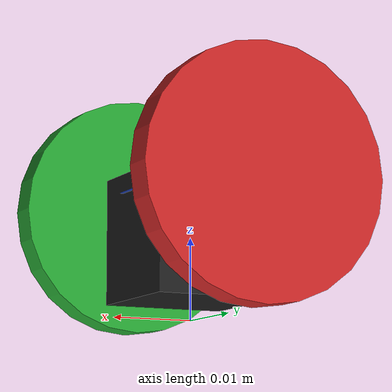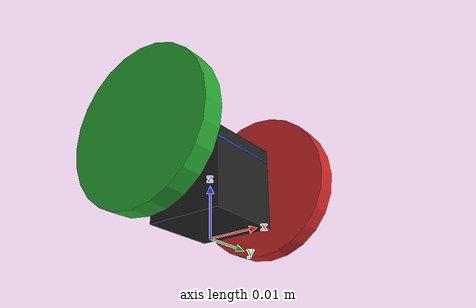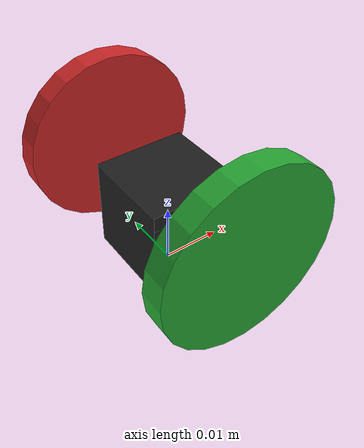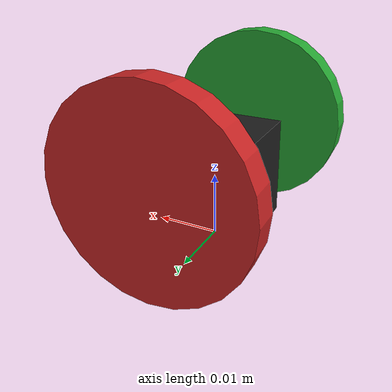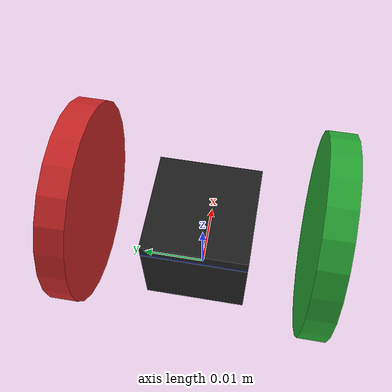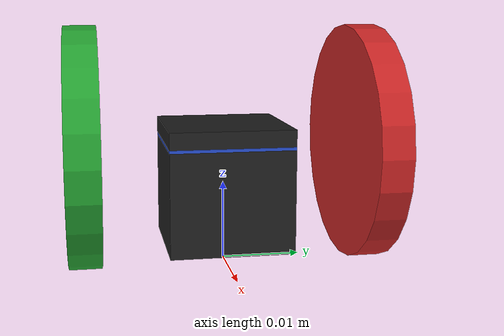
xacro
<?xml version="1.0"?>
<robot
     xmlns:xacro="http://www.ros.org/wiki/xacro" name="test_try">
     <!-- define the base-link origin to lie at floor level, between the drive wheels-->
     <!--main body is a simple box; origin is a center of box-->
    <xacro:property name="bodylen" value="0.0154" />
    <xacro:property name="bodywidth" value="0.0154" />
    <xacro:property name="bodyheight" value="0.0154" />
    <!--xacro:property name="bodyclearance" value="0.4" /-->  <!--clearance from bottom of box to ground-->
    <!-- derived values-->
    <xacro:property name="half_bodylen" value="${bodylen/2.0}" />
    <xacro:property name="half_bodyheight" value="${bodyheight/2.0}" />
    <!-- placement of main body relative to base link frame -->
    <xacro:property name="bodyOX" value="0" />
    <xacro:property name="bodyOY" value="0" />
    <xacro:property name="bodyOZ" value="0.0100" />

    <!-- define the drive-wheel dimensions-->
    <xacro:property name="tirediam" value="0.03" />
    <xacro:property name="tirerad" value="${tirediam/2.0}" />
    <xacro:property name="tirewidth" value="0.004" />
    <!-- "track" is the distance between the drive wheels -->
    <xacro:property name="track" value="0.0354" />

    <xacro:property name="M_PI" value="3.1415926535897931" />
    <xacro:property name="lidarheight" value="0.000381" />

    <!--here is a default inertia matrix with small, but legal values; use this when don't need accuracy for I -->
    <!--model will assign inertia matrix dominated by main body box -->

    <xacro:macro name="wheel" params="prefix reflect">
        <link name="${prefix}_wheel">
            <visual>
                <geometry>
                    <cylinder radius="${tirerad}" length="${tirewidth}"/>
                </geometry>
            </visual>

            <collision>
                <geometry>
                    <cylinder radius="${tirerad}" length="${tirewidth}"/>
                </geometry>
            </collision>
  <inertial>
    <mass value="0.01" />
    <origin xyz="0 0 0.002" />
    <inertia ixx="0.000005659" ixy="0.0" ixz="0.0"
      iyy="0.000005659" iyz="0.0"
      izz="0.00001125" />
  </inertial>
        </link>

        <joint name="${prefix}_wheel_joint" type="continuous">
            <axis xyz="0 0 1"/>
            <parent link="base_link"/>
            <child link="${prefix}_wheel"/>
            <origin xyz="${bodyOX} ${reflect*track/2} ${tirerad}" rpy="0 ${M_PI/2} ${M_PI/2}"/>
            <limit effort="100" velocity="15" />
            <joint_properties damping="0.0" friction="0.0" />
        </joint>
    </xacro:macro>

    <link name="base_link">
        <visual>
            <geometry>
                <box size="${bodylen} ${bodywidth} ${bodyheight}"/>
            </geometry>
            <origin xyz="${bodyOX} ${bodyOY} ${bodyOZ}" rpy="0 0 0"/>
        </visual>
        <collision>
            <geometry>
                <box size="${bodylen} ${bodywidth} ${bodyheight}"/>
            </geometry>
            <origin xyz="${bodyOX} ${bodyOY} ${bodyOZ}" rpy="0 0 0"/>
        </collision>
  <inertial>
    <mass value="0.3" />
    <origin xyz="0 0 ${bodyOZ}" />
    <inertia ixx="0.032258" ixy="0.0" ixz="0.0"
      iyy="20.2258" iyz="0.0"
      izz="0.032258" />
  </inertial>
    </link>

    <xacro:wheel prefix="left" reflect="1"/>
    <xacro:wheel prefix="right" reflect="-1"/>

 <gazebo>
  <plugin name="differential_drive_controller" filename="libgazebo_ros_diff_drive.so">
    <alwaysOn>true</alwaysOn>
    <updateRate>100</updateRate>
    <leftJoint>left_wheel_joint</leftJoint>
    <rightJoint>right_wheel_joint</rightJoint>
    <wheelSeparation>${track}</wheelSeparation>
    <wheelDiameter>${tirediam}</wheelDiameter>
    <torque>200</torque>
    <wheelTorque>100</wheelTorque>
    <commandTopic>cmd_vel</commandTopic>
    <odometryTopic>odom</odometryTopic>
    <odometryFrame>odom</odometryFrame>
    <robotBaseFrame>base_link</robotBaseFrame>
    <publishWheelTF>true</publishWheelTF>
    <publishWheelJointState>true</publishWheelJointState>
  </plugin>
 </gazebo>

  <gazebo reference="right_wheel">
    <mu1>100000</mu1>
    <mu2>100000</mu2>
    <material>Gazebo/Green</material>
  </gazebo>
  <gazebo reference="left_wheel">
    <mu1>100000</mu1>
    <mu2>100000</mu2>
    <material>Gazebo/Red</material>
  </gazebo>

  <gazebo reference="base_link">
    <material>Gazebo/Black</material>
  </gazebo>

  <link name="lidar_link">
      <collision>
          <origin xyz="0 0 0" rpy="0 0 0"/>
          <geometry>
          <box size="${bodylen} ${bodywidth} ${lidarheight}"/>
          </geometry>
      </collision>

      <visual>
          <origin xyz="0 0 0" rpy="0 0 0" />
          <geometry>s
          <box size="${bodylen} ${bodywidth} ${lidarheight}"/>
          </geometry>
      </visual>

      <inertial>
          <mass value="0.00000001" />
          <origin xyz="0 0 0" rpy="0 0 0"/>
          <inertia ixx="0.000032258" ixy="0" ixz="0" iyy="0.000032258" iyz="0" izz="0.000032258" />
      </inertial>
  </link>

  <joint name="lidar_joint" type="fixed">
      <axis xyz="0 1 0" />
      <origin xyz="${bodyOX} ${bodyOY} ${bodyheight}" rpy="0 0 0"/>
      <parent link="base_link"/>
      <child link="lidar_link"/>
  </joint>

  <gazebo reference="lidar_link">
    <mu1>0.1</mu1>
    <mu2>0.1</mu2>
    <material>Gazebo/Blue</material>

    <sensor type="gpu_ray" name="sick_lidar_sensor">
      <pose>0 0 0 0 0 0</pose>
      <visualize>true</visualize>
      <update_rate>40</update_rate>
      <ray>
        <scan>
          <horizontal>
            <samples>181</samples>
            <resolution>1</resolution>
            <min_angle>-3.140796</min_angle>
            <max_angle>3.140796</max_angle>
          </horizontal>
        </scan>
        <range>
          <min>1.10</min>
          <max>40.0</max>
          <resolution>0.01</resolution>
        </range>
        <noise>
          <type>gaussian</type>
          <mean>0.0</mean>
          <stddev>0.01</stddev>
        </noise>
      </ray>
      <plugin name="gazebo_ros_lidar_controller" filename="libgazebo_ros_gpu_laser.so">
        <topicName>/scan1</topicName>
        <frameName>lidar_link</frameName>
      </plugin>
    </sensor>

  </gazebo>

</robot>
